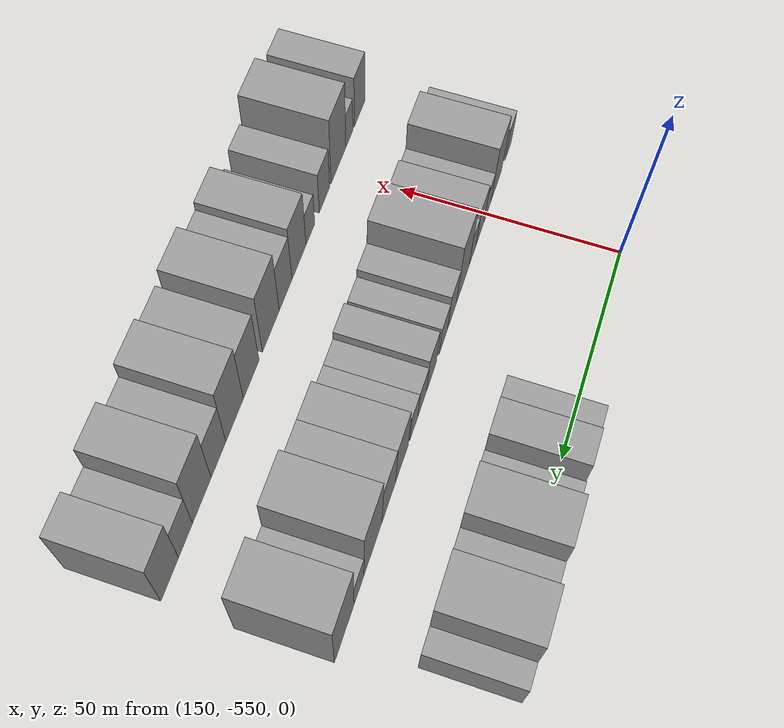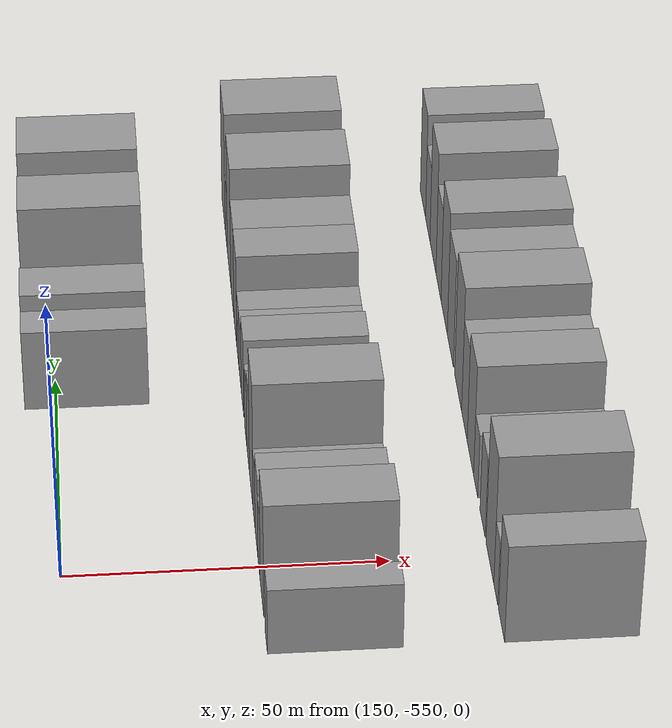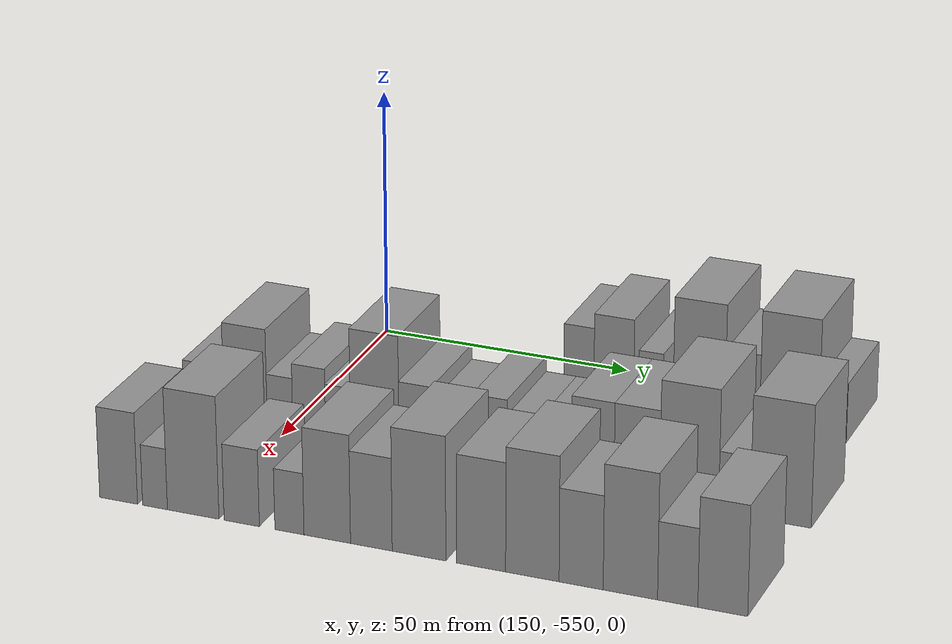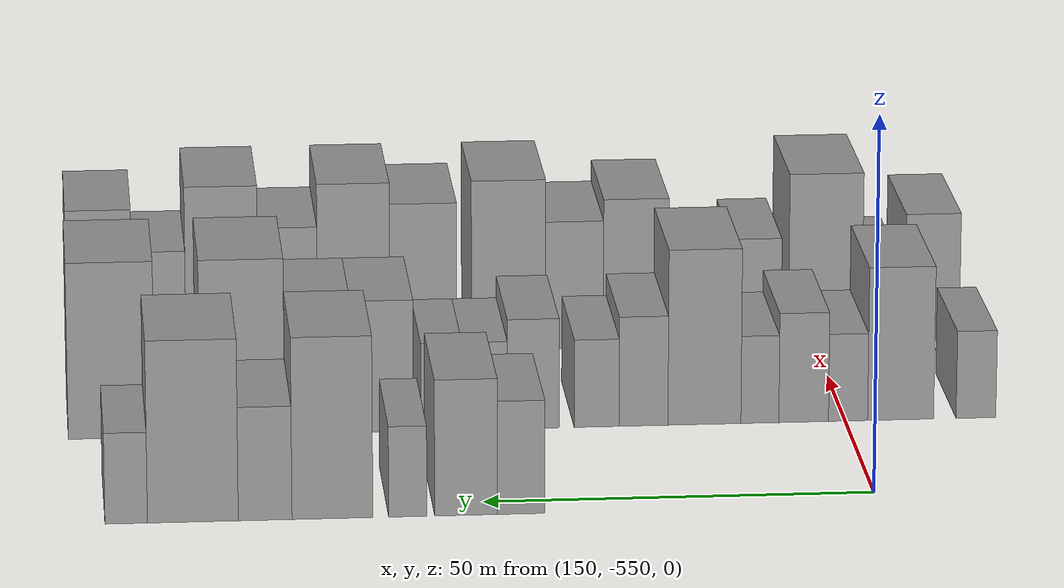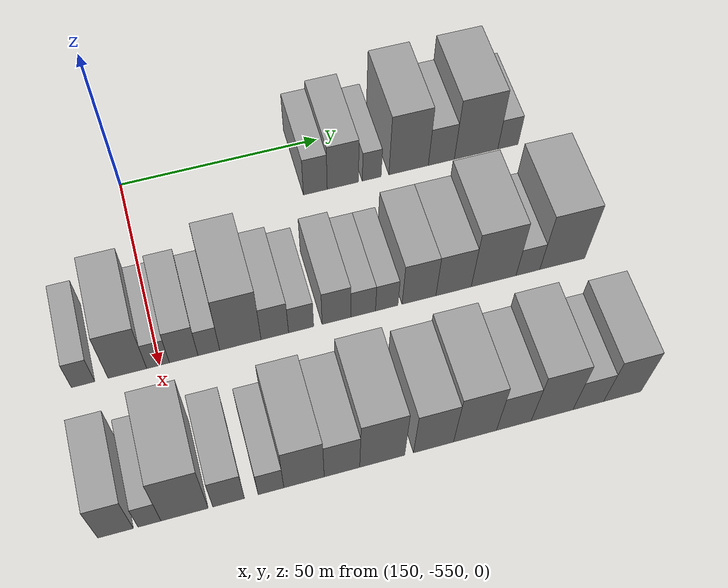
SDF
<sdf version="1.6">
 <world name="default">
  <model name="building_371">
   <static>1</static>
   <pose>155.0000 -504.4167 0 0.000000 0.000000 0.000000</pose>
   <link name="link">
    <pose>0 0 7.50 0 0 0</pose>
    <collision name="collision"><geometry><box><size>20.0000 6.0292 15.0000</size></box></geometry></collision>
    <visual name="visual">
     <cast_shadows>0</cast_shadows>
     <geometry><box><size>20.0000 6.0292 15.0000</size></box></geometry>
     <material>
      <script>
       <uri>model://grey_wall/materials/scripts</uri>
       <uri>model://grey_wall/materials/textures</uri>
       <name>vrc/grey_wall</name>
      </script>
     </material>
    </visual>
   </link>
  </model>
  <model name="building_372">
   <static>1</static>
   <pose>155.0000 -497.4340 0 0.000000 0.000000 0.000000</pose>
   <link name="link">
    <pose>0 0 9.00 0 0 0</pose>
    <collision name="collision"><geometry><box><size>20.0000 7.9362 18.0000</size></box></geometry></collision>
    <visual name="visual">
     <cast_shadows>0</cast_shadows>
     <geometry><box><size>20.0000 7.9362 18.0000</size></box></geometry>
     <material>
      <script>
       <uri>model://grey_wall/materials/scripts</uri>
       <uri>model://grey_wall/materials/textures</uri>
       <name>vrc/grey_wall</name>
      </script>
     </material>
    </visual>
   </link>
  </model>
  <model name="building_373">
   <static>1</static>
   <pose>155.0000 -490.0516 0 0.000000 0.000000 0.000000</pose>
   <link name="link">
    <pose>0 0 6.00 0 0 0</pose>
    <collision name="collision"><geometry><box><size>20.0000 4.8285 12.0000</size></box></geometry></collision>
    <visual name="visual">
     <cast_shadows>0</cast_shadows>
     <geometry><box><size>20.0000 4.8285 12.0000</size></box></geometry>
     <material>
      <script>
       <uri>model://grey_wall/materials/scripts</uri>
       <uri>model://grey_wall/materials/textures</uri>
       <name>vrc/grey_wall</name>
      </script>
     </material>
    </visual>
   </link>
  </model>
  <model name="building_374">
   <static>1</static>
   <pose>155.0000 -480.5333 0 0.000000 0.000000 0.000000</pose>
   <link name="link">
    <pose>0 0 12.00 0 0 0</pose>
    <collision name="collision"><geometry><box><size>20.0000 10.2081 24.0000</size></box></geometry></collision>
    <visual name="visual">
     <cast_shadows>0</cast_shadows>
     <geometry><box><size>20.0000 10.2081 24.0000</size></box></geometry>
     <material>
      <script>
       <uri>model://grey_wall/materials/scripts</uri>
       <uri>model://grey_wall/materials/textures</uri>
       <name>vrc/grey_wall</name>
      </script>
     </material>
    </visual>
   </link>
  </model>
  <model name="building_375">
   <static>1</static>
   <pose>155.0000 -472.0370 0 0.000000 0.000000 0.000000</pose>
   <link name="link">
    <pose>0 0 7.50 0 0 0</pose>
    <collision name="collision"><geometry><box><size>20.0000 6.7846 15.0000</size></box></geometry></collision>
    <visual name="visual">
     <cast_shadows>0</cast_shadows>
     <geometry><box><size>20.0000 6.7846 15.0000</size></box></geometry>
     <material>
      <script>
       <uri>model://grey_wall/materials/scripts</uri>
       <uri>model://grey_wall/materials/textures</uri>
       <name>vrc/grey_wall</name>
      </script>
     </material>
    </visual>
   </link>
  </model>
  <model name="building_376">
   <static>1</static>
   <pose>155.0000 -462.9257 0 0.000000 0.000000 0.000000</pose>
   <link name="link">
    <pose>0 0 12.00 0 0 0</pose>
    <collision name="collision"><geometry><box><size>20.0000 11.4380 24.0000</size></box></geometry></collision>
    <visual name="visual">
     <cast_shadows>0</cast_shadows>
     <geometry><box><size>20.0000 11.4380 24.0000</size></box></geometry>
     <material>
      <script>
       <uri>model://grey_wall/materials/scripts</uri>
       <uri>model://grey_wall/materials/textures</uri>
       <name>vrc/grey_wall</name>
      </script>
     </material>
    </visual>
   </link>
  </model>
  <model name="building_377">
   <static>1</static>
   <pose>155.0000 -454.5300 0 0.000000 0.000000 0.000000</pose>
   <link name="link">
    <pose>0 0 6.00 0 0 0</pose>
    <collision name="collision"><geometry><box><size>20.0000 5.3534 12.0000</size></box></geometry></collision>
    <visual name="visual">
     <cast_shadows>0</cast_shadows>
     <geometry><box><size>20.0000 5.3534 12.0000</size></box></geometry>
     <material>
      <script>
       <uri>model://grey_wall/materials/scripts</uri>
       <uri>model://grey_wall/materials/textures</uri>
       <name>vrc/grey_wall</name>
      </script>
     </material>
    </visual>
   </link>
  </model>
  <model name="building_486">
   <static>1</static>
   <pose>190.0000 -567.3631 0 0.000000 0.000000 0.000000</pose>
   <link name="link">
    <pose>0 0 6.00 0 0 0</pose>
    <collision name="collision"><geometry><box><size>20.0000 5.2738 12.0000</size></box></geometry></collision>
    <visual name="visual">
     <cast_shadows>0</cast_shadows>
     <geometry><box><size>20.0000 5.2738 12.0000</size></box></geometry>
     <material>
      <script>
       <uri>model://grey_wall/materials/scripts</uri>
       <uri>model://grey_wall/materials/textures</uri>
       <name>vrc/grey_wall</name>
      </script>
     </material>
    </visual>
   </link>
  </model>
  <model name="building_487">
   <static>1</static>
   <pose>190.0000 -557.3371 0 0.000000 0.000000 0.000000</pose>
   <link name="link">
    <pose>0 0 10.50 0 0 0</pose>
    <collision name="collision"><geometry><box><size>20.0000 8.7782 21.0000</size></box></geometry></collision>
    <visual name="visual">
     <cast_shadows>0</cast_shadows>
     <geometry><box><size>20.0000 8.7782 21.0000</size></box></geometry>
     <material>
      <script>
       <uri>model://grey_wall/materials/scripts</uri>
       <uri>model://grey_wall/materials/textures</uri>
       <name>vrc/grey_wall</name>
      </script>
     </material>
    </visual>
   </link>
  </model>
  <model name="building_488">
   <static>1</static>
   <pose>190.0000 -550.3564 0 0.000000 0.000000 0.000000</pose>
   <link name="link">
    <pose>0 0 6.00 0 0 0</pose>
    <collision name="collision"><geometry><box><size>20.0000 5.1834 12.0000</size></box></geometry></collision>
    <visual name="visual">
     <cast_shadows>0</cast_shadows>
     <geometry><box><size>20.0000 5.1834 12.0000</size></box></geometry>
     <material>
      <script>
       <uri>model://grey_wall/materials/scripts</uri>
       <uri>model://grey_wall/materials/textures</uri>
       <name>vrc/grey_wall</name>
      </script>
     </material>
    </visual>
   </link>
  </model>
  <model name="building_489">
   <static>1</static>
   <pose>190.0000 -544.4713 0 0.000000 0.000000 0.000000</pose>
   <link name="link">
    <pose>0 0 7.50 0 0 0</pose>
    <collision name="collision"><geometry><box><size>20.0000 6.5867 15.0000</size></box></geometry></collision>
    <visual name="visual">
     <cast_shadows>0</cast_shadows>
     <geometry><box><size>20.0000 6.5867 15.0000</size></box></geometry>
     <material>
      <script>
       <uri>model://grey_wall/materials/scripts</uri>
       <uri>model://grey_wall/materials/textures</uri>
       <name>vrc/grey_wall</name>
      </script>
     </material>
    </visual>
   </link>
  </model>
  <model name="building_490">
   <static>1</static>
   <pose>190.0000 -538.6658 0 0.000000 0.000000 0.000000</pose>
   <link name="link">
    <pose>0 0 6.00 0 0 0</pose>
    <collision name="collision"><geometry><box><size>20.0000 5.0244 12.0000</size></box></geometry></collision>
    <visual name="visual">
     <cast_shadows>0</cast_shadows>
     <geometry><box><size>20.0000 5.0244 12.0000</size></box></geometry>
     <material>
      <script>
       <uri>model://grey_wall/materials/scripts</uri>
       <uri>model://grey_wall/materials/textures</uri>
       <name>vrc/grey_wall</name>
      </script>
     </material>
    </visual>
   </link>
  </model>
  <model name="building_491">
   <static>1</static>
   <pose>190.0000 -531.3339 0 0.000000 0.000000 0.000000</pose>
   <link name="link">
    <pose>0 0 12.00 0 0 0</pose>
    <collision name="collision"><geometry><box><size>20.0000 9.6394 24.0000</size></box></geometry></collision>
    <visual name="visual">
     <cast_shadows>0</cast_shadows>
     <geometry><box><size>20.0000 9.6394 24.0000</size></box></geometry>
     <material>
      <script>
       <uri>model://grey_wall/materials/scripts</uri>
       <uri>model://grey_wall/materials/textures</uri>
       <name>vrc/grey_wall</name>
      </script>
     </material>
    </visual>
   </link>
  </model>
  <model name="building_492">
   <static>1</static>
   <pose>190.0000 -523.2801 0 0.000000 0.000000 0.000000</pose>
   <link name="link">
    <pose>0 0 7.50 0 0 0</pose>
    <collision name="collision"><geometry><box><size>20.0000 6.4683 15.0000</size></box></geometry></collision>
    <visual name="visual">
     <cast_shadows>0</cast_shadows>
     <geometry><box><size>20.0000 6.4683 15.0000</size></box></geometry>
     <material>
      <script>
       <uri>model://grey_wall/materials/scripts</uri>
       <uri>model://grey_wall/materials/textures</uri>
       <name>vrc/grey_wall</name>
      </script>
     </material>
    </visual>
   </link>
  </model>
  <model name="building_493">
   <static>1</static>
   <pose>190.0000 -517.0808 0 0.000000 0.000000 0.000000</pose>
   <link name="link">
    <pose>0 0 6.00 0 0 0</pose>
    <collision name="collision"><geometry><box><size>20.0000 5.9303 12.0000</size></box></geometry></collision>
    <visual name="visual">
     <cast_shadows>0</cast_shadows>
     <geometry><box><size>20.0000 5.9303 12.0000</size></box></geometry>
     <material>
      <script>
       <uri>model://grey_wall/materials/scripts</uri>
       <uri>model://grey_wall/materials/textures</uri>
       <name>vrc/grey_wall</name>
      </script>
     </material>
    </visual>
   </link>
  </model>
  <model name="building_494">
   <static>1</static>
   <pose>190.0000 -508.7069 0 0.000000 0.000000 0.000000</pose>
   <link name="link">
    <pose>0 0 7.50 0 0 0</pose>
    <collision name="collision"><geometry><box><size>20.0000 6.8176 15.0000</size></box></geometry></collision>
    <visual name="visual">
     <cast_shadows>0</cast_shadows>
     <geometry><box><size>20.0000 6.8176 15.0000</size></box></geometry>
     <material>
      <script>
       <uri>model://grey_wall/materials/scripts</uri>
       <uri>model://grey_wall/materials/textures</uri>
       <name>vrc/grey_wall</name>
      </script>
     </material>
    </visual>
   </link>
  </model>
  <model name="building_495">
   <static>1</static>
   <pose>190.0000 -502.3276 0 0.000000 0.000000 0.000000</pose>
   <link name="link">
    <pose>0 0 6.00 0 0 0</pose>
    <collision name="collision"><geometry><box><size>20.0000 5.9409 12.0000</size></box></geometry></collision>
    <visual name="visual">
     <cast_shadows>0</cast_shadows>
     <geometry><box><size>20.0000 5.9409 12.0000</size></box></geometry>
     <material>
      <script>
       <uri>model://grey_wall/materials/scripts</uri>
       <uri>model://grey_wall/materials/textures</uri>
       <name>vrc/grey_wall</name>
      </script>
     </material>
    </visual>
   </link>
  </model>
  <model name="building_496">
   <static>1</static>
   <pose>190.0000 -496.6466 0 0.000000 0.000000 0.000000</pose>
   <link name="link">
    <pose>0 0 6.00 0 0 0</pose>
    <collision name="collision"><geometry><box><size>20.0000 5.4210 12.0000</size></box></geometry></collision>
    <visual name="visual">
     <cast_shadows>0</cast_shadows>
     <geometry><box><size>20.0000 5.4210 12.0000</size></box></geometry>
     <material>
      <script>
       <uri>model://grey_wall/materials/scripts</uri>
       <uri>model://grey_wall/materials/textures</uri>
       <name>vrc/grey_wall</name>
      </script>
     </material>
    </visual>
   </link>
  </model>
  <model name="building_497">
   <static>1</static>
   <pose>190.0000 -488.8235 0 0.000000 0.000000 0.000000</pose>
   <link name="link">
    <pose>0 0 9.00 0 0 0</pose>
    <collision name="collision"><geometry><box><size>20.0000 8.2253 18.0000</size></box></geometry></collision>
    <visual name="visual">
     <cast_shadows>0</cast_shadows>
     <geometry><box><size>20.0000 8.2253 18.0000</size></box></geometry>
     <material>
      <script>
       <uri>model://grey_wall/materials/scripts</uri>
       <uri>model://grey_wall/materials/textures</uri>
       <name>vrc/grey_wall</name>
      </script>
     </material>
    </visual>
   </link>
  </model>
  <model name="building_498">
   <static>1</static>
   <pose>190.0000 -480.3732 0 0.000000 0.000000 0.000000</pose>
   <link name="link">
    <pose>0 0 9.00 0 0 0</pose>
    <collision name="collision"><geometry><box><size>20.0000 8.6754 18.0000</size></box></geometry></collision>
    <visual name="visual">
     <cast_shadows>0</cast_shadows>
     <geometry><box><size>20.0000 8.6754 18.0000</size></box></geometry>
     <material>
      <script>
       <uri>model://grey_wall/materials/scripts</uri>
       <uri>model://grey_wall/materials/textures</uri>
       <name>vrc/grey_wall</name>
      </script>
     </material>
    </visual>
   </link>
  </model>
  <model name="building_499">
   <static>1</static>
   <pose>190.0000 -470.4887 0 0.000000 0.000000 0.000000</pose>
   <link name="link">
    <pose>0 0 12.00 0 0 0</pose>
    <collision name="collision"><geometry><box><size>20.0000 11.0935 24.0000</size></box></geometry></collision>
    <visual name="visual">
     <cast_shadows>0</cast_shadows>
     <geometry><box><size>20.0000 11.0935 24.0000</size></box></geometry>
     <material>
      <script>
       <uri>model://grey_wall/materials/scripts</uri>
       <uri>model://grey_wall/materials/textures</uri>
       <name>vrc/grey_wall</name>
      </script>
     </material>
    </visual>
   </link>
  </model>
  <model name="building_500">
   <static>1</static>
   <pose>190.0000 -461.9829 0 0.000000 0.000000 0.000000</pose>
   <link name="link">
    <pose>0 0 6.00 0 0 0</pose>
    <collision name="collision"><geometry><box><size>20.0000 5.9182 12.0000</size></box></geometry></collision>
    <visual name="visual">
     <cast_shadows>0</cast_shadows>
     <geometry><box><size>20.0000 5.9182 12.0000</size></box></geometry>
     <material>
      <script>
       <uri>model://grey_wall/materials/scripts</uri>
       <uri>model://grey_wall/materials/textures</uri>
       <name>vrc/grey_wall</name>
      </script>
     </material>
    </visual>
   </link>
  </model>
  <model name="building_501">
   <static>1</static>
   <pose>190.0000 -453.3709 0 0.000000 0.000000 0.000000</pose>
   <link name="link">
    <pose>0 0 12.00 0 0 0</pose>
    <collision name="collision"><geometry><box><size>20.0000 11.3057 24.0000</size></box></geometry></collision>
    <visual name="visual">
     <cast_shadows>0</cast_shadows>
     <geometry><box><size>20.0000 11.3057 24.0000</size></box></geometry>
     <material>
      <script>
       <uri>model://grey_wall/materials/scripts</uri>
       <uri>model://grey_wall/materials/textures</uri>
       <name>vrc/grey_wall</name>
      </script>
     </material>
    </visual>
   </link>
  </model>
  <model name="building_615">
   <static>1</static>
   <pose>225.0000 -566.2390 0 0.000000 0.000000 0.000000</pose>
   <link name="link">
    <pose>0 0 9.00 0 0 0</pose>
    <collision name="collision"><geometry><box><size>20.0000 7.5220 18.0000</size></box></geometry></collision>
    <visual name="visual">
     <cast_shadows>0</cast_shadows>
     <geometry><box><size>20.0000 7.5220 18.0000</size></box></geometry>
     <material>
      <script>
       <uri>model://grey_wall/materials/scripts</uri>
       <uri>model://grey_wall/materials/textures</uri>
       <name>vrc/grey_wall</name>
      </script>
     </material>
    </visual>
   </link>
  </model>
  <model name="building_616">
   <static>1</static>
   <pose>225.0000 -559.0276 0 0.000000 0.000000 0.000000</pose>
   <link name="link">
    <pose>0 0 6.00 0 0 0</pose>
    <collision name="collision"><geometry><box><size>20.0000 4.9008 12.0000</size></box></geometry></collision>
    <visual name="visual">
     <cast_shadows>0</cast_shadows>
     <geometry><box><size>20.0000 4.9008 12.0000</size></box></geometry>
     <material>
      <script>
       <uri>model://grey_wall/materials/scripts</uri>
       <uri>model://grey_wall/materials/textures</uri>
       <name>vrc/grey_wall</name>
      </script>
     </material>
    </visual>
   </link>
  </model>
  <model name="building_617">
   <static>1</static>
   <pose>225.0000 -551.5154 0 0.000000 0.000000 0.000000</pose>
   <link name="link">
    <pose>0 0 12.00 0 0 0</pose>
    <collision name="collision"><geometry><box><size>20.0000 10.1237 24.0000</size></box></geometry></collision>
    <visual name="visual">
     <cast_shadows>0</cast_shadows>
     <geometry><box><size>20.0000 10.1237 24.0000</size></box></geometry>
     <material>
      <script>
       <uri>model://grey_wall/materials/scripts</uri>
       <uri>model://grey_wall/materials/textures</uri>
       <name>vrc/grey_wall</name>
      </script>
     </material>
    </visual>
   </link>
  </model>
  <model name="building_618">
   <static>1</static>
   <pose>225.0000 -542.0239 0 0.000000 0.000000 0.000000</pose>
   <link name="link">
    <pose>0 0 7.50 0 0 0</pose>
    <collision name="collision"><geometry><box><size>20.0000 6.8592 15.0000</size></box></geometry></collision>
    <visual name="visual">
     <cast_shadows>0</cast_shadows>
     <geometry><box><size>20.0000 6.8592 15.0000</size></box></geometry>
     <material>
      <script>
       <uri>model://grey_wall/materials/scripts</uri>
       <uri>model://grey_wall/materials/textures</uri>
       <name>vrc/grey_wall</name>
      </script>
     </material>
    </visual>
   </link>
  </model>
  <model name="building_619">
   <static>1</static>
   <pose>225.0000 -532.7840 0 0.000000 0.000000 0.000000</pose>
   <link name="link">
    <pose>0 0 6.00 0 0 0</pose>
    <collision name="collision"><geometry><box><size>20.0000 5.6206 12.0000</size></box></geometry></collision>
    <visual name="visual">
     <cast_shadows>0</cast_shadows>
     <geometry><box><size>20.0000 5.6206 12.0000</size></box></geometry>
     <material>
      <script>
       <uri>model://grey_wall/materials/scripts</uri>
       <uri>model://grey_wall/materials/textures</uri>
       <name>vrc/grey_wall</name>
      </script>
     </material>
    </visual>
   </link>
  </model>
  <model name="building_620">
   <static>1</static>
   <pose>225.0000 -525.5233 0 0.000000 0.000000 0.000000</pose>
   <link name="link">
    <pose>0 0 10.50 0 0 0</pose>
    <collision name="collision"><geometry><box><size>20.0000 8.9007 21.0000</size></box></geometry></collision>
    <visual name="visual">
     <cast_shadows>0</cast_shadows>
     <geometry><box><size>20.0000 8.9007 21.0000</size></box></geometry>
     <material>
      <script>
       <uri>model://grey_wall/materials/scripts</uri>
       <uri>model://grey_wall/materials/textures</uri>
       <name>vrc/grey_wall</name>
      </script>
     </material>
    </visual>
   </link>
  </model>
  <model name="building_621">
   <static>1</static>
   <pose>225.0000 -517.1164 0 0.000000 0.000000 0.000000</pose>
   <link name="link">
    <pose>0 0 9.00 0 0 0</pose>
    <collision name="collision"><geometry><box><size>20.0000 7.9133 18.0000</size></box></geometry></collision>
    <visual name="visual">
     <cast_shadows>0</cast_shadows>
     <geometry><box><size>20.0000 7.9133 18.0000</size></box></geometry>
     <material>
      <script>
       <uri>model://grey_wall/materials/scripts</uri>
       <uri>model://grey_wall/materials/textures</uri>
       <name>vrc/grey_wall</name>
      </script>
     </material>
    </visual>
   </link>
  </model>
  <model name="building_622">
   <static>1</static>
   <pose>225.0000 -508.1045 0 0.000000 0.000000 0.000000</pose>
   <link name="link">
    <pose>0 0 12.00 0 0 0</pose>
    <collision name="collision"><geometry><box><size>20.0000 10.1104 24.0000</size></box></geometry></collision>
    <visual name="visual">
     <cast_shadows>0</cast_shadows>
     <geometry><box><size>20.0000 10.1104 24.0000</size></box></geometry>
     <material>
      <script>
       <uri>model://grey_wall/materials/scripts</uri>
       <uri>model://grey_wall/materials/textures</uri>
       <name>vrc/grey_wall</name>
      </script>
     </material>
    </visual>
   </link>
  </model>
  <model name="building_623">
   <static>1</static>
   <pose>225.0000 -496.4879 0 0.000000 0.000000 0.000000</pose>
   <link name="link">
    <pose>0 0 10.50 0 0 0</pose>
    <collision name="collision"><geometry><box><size>20.0000 9.1229 21.0000</size></box></geometry></collision>
    <visual name="visual">
     <cast_shadows>0</cast_shadows>
     <geometry><box><size>20.0000 9.1229 21.0000</size></box></geometry>
     <material>
      <script>
       <uri>model://grey_wall/materials/scripts</uri>
       <uri>model://grey_wall/materials/textures</uri>
       <name>vrc/grey_wall</name>
      </script>
     </material>
    </visual>
   </link>
  </model>
  <model name="building_624">
   <static>1</static>
   <pose>225.0000 -486.9995 0 0.000000 0.000000 0.000000</pose>
   <link name="link">
    <pose>0 0 12.00 0 0 0</pose>
    <collision name="collision"><geometry><box><size>20.0000 9.8539 24.0000</size></box></geometry></collision>
    <visual name="visual">
     <cast_shadows>0</cast_shadows>
     <geometry><box><size>20.0000 9.8539 24.0000</size></box></geometry>
     <material>
      <script>
       <uri>model://grey_wall/materials/scripts</uri>
       <uri>model://grey_wall/materials/textures</uri>
       <name>vrc/grey_wall</name>
      </script>
     </material>
    </visual>
   </link>
  </model>
  <model name="building_625">
   <static>1</static>
   <pose>225.0000 -478.0428 0 0.000000 0.000000 0.000000</pose>
   <link name="link">
    <pose>0 0 9.00 0 0 0</pose>
    <collision name="collision"><geometry><box><size>20.0000 8.0595 18.0000</size></box></geometry></collision>
    <visual name="visual">
     <cast_shadows>0</cast_shadows>
     <geometry><box><size>20.0000 8.0595 18.0000</size></box></geometry>
     <material>
      <script>
       <uri>model://grey_wall/materials/scripts</uri>
       <uri>model://grey_wall/materials/textures</uri>
       <name>vrc/grey_wall</name>
      </script>
     </material>
    </visual>
   </link>
  </model>
  <model name="building_626">
   <static>1</static>
   <pose>225.0000 -469.0925 0 0.000000 0.000000 0.000000</pose>
   <link name="link">
    <pose>0 0 12.00 0 0 0</pose>
    <collision name="collision"><geometry><box><size>20.0000 9.8412 24.0000</size></box></geometry></collision>
    <visual name="visual">
     <cast_shadows>0</cast_shadows>
     <geometry><box><size>20.0000 9.8412 24.0000</size></box></geometry>
     <material>
      <script>
       <uri>model://grey_wall/materials/scripts</uri>
       <uri>model://grey_wall/materials/textures</uri>
       <name>vrc/grey_wall</name>
      </script>
     </material>
    </visual>
   </link>
  </model>
  <model name="building_627">
   <static>1</static>
   <pose>225.0000 -460.5561 0 0.000000 0.000000 0.000000</pose>
   <link name="link">
    <pose>0 0 7.50 0 0 0</pose>
    <collision name="collision"><geometry><box><size>20.0000 7.2316 15.0000</size></box></geometry></collision>
    <visual name="visual">
     <cast_shadows>0</cast_shadows>
     <geometry><box><size>20.0000 7.2316 15.0000</size></box></geometry>
     <material>
      <script>
       <uri>model://grey_wall/materials/scripts</uri>
       <uri>model://grey_wall/materials/textures</uri>
       <name>vrc/grey_wall</name>
      </script>
     </material>
    </visual>
   </link>
  </model>
  <model name="building_628">
   <static>1</static>
   <pose>225.0000 -452.4936 0 0.000000 0.000000 0.000000</pose>
   <link name="link">
    <pose>0 0 10.50 0 0 0</pose>
    <collision name="collision"><geometry><box><size>20.0000 8.8933 21.0000</size></box></geometry></collision>
    <visual name="visual">
     <cast_shadows>0</cast_shadows>
     <geometry><box><size>20.0000 8.8933 21.0000</size></box></geometry>
     <material>
      <script>
       <uri>model://grey_wall/materials/scripts</uri>
       <uri>model://grey_wall/materials/textures</uri>
       <name>vrc/grey_wall</name>
      </script>
     </material>
    </visual>
   </link>
  </model>
 </world>
</sdf>
